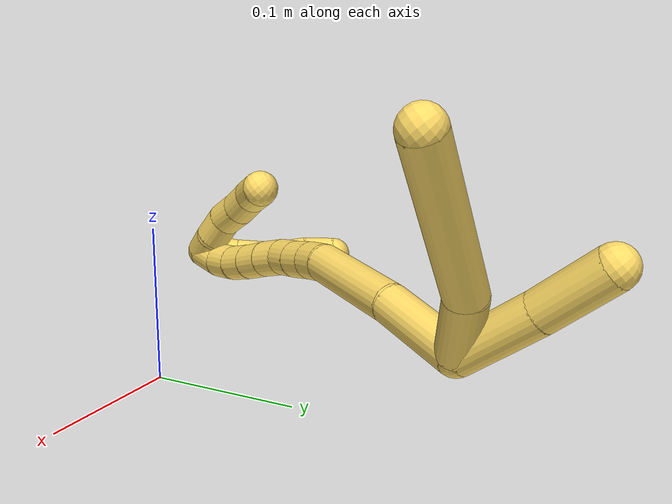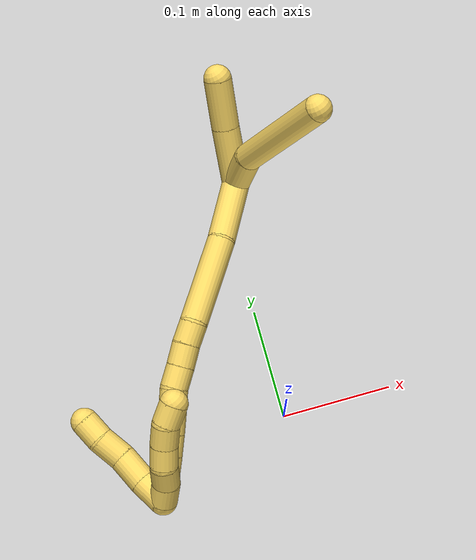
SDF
<sdf version="1.7">
 <world name="default">
  <model name="5">
   <static>0</static>
   <link name="5">
    <collision name="collision-cylinder-e_1_2_8">
     <pose>0.015016 -0.002826 0.013752 0.202695 0.818984 0.088221</pose>
     <geometry><cylinder><radius>0.0125</radius><length>0.041114</length></cylinder></geometry>
     <surface>
      <friction><ode><mu>1.16</mu><mu2>1.16</mu2><slip1>0</slip1><slip2>0</slip2></ode></friction>
      <contact><ode><kp>1e+06</kp><kd>1</kd><max_vel>0</max_vel><min_depth>0.001</min_depth></ode></contact>
     </surface>
    </collision>
    <visual name="visual-cylinder-e_1_2_8">
     <pose>0.015016 -0.002826 0.013752 0.202695 0.818984 0.088221</pose>
     <geometry><cylinder><radius>0.0125</radius><length>0.041114</length></cylinder></geometry>
     <material><ambient>1 0.858824 0.4 1</ambient></material>
    </visual>
    <collision name="collision-cylinder-e_2_8_6">
     <pose>0.079346 -0.01411 0.048967 0.375371 1.13325 0.240495</pose>
     <geometry><cylinder><radius>0.0125</radius><length>0.108886</length></cylinder></geometry>
     <surface>
      <friction><ode><mu>1.16</mu><mu2>1.16</mu2><slip1>0</slip1><slip2>0</slip2></ode></friction>
      <contact><ode><kp>1e+06</kp><kd>1</kd><max_vel>0</max_vel><min_depth>0.001</min_depth></ode></contact>
     </surface>
    </collision>
    <visual name="visual-cylinder-e_2_8_6">
     <pose>0.079346 -0.01411 0.048967 0.375371 1.13325 0.240495</pose>
     <geometry><cylinder><radius>0.0125</radius><length>0.108886</length></cylinder></geometry>
     <material><ambient>1 0.858824 0.4 1</ambient></material>
    </visual>
    <collision name="collision-cylinder-e_1_2_9">
     <pose>0.005098 0.007411 0.025532 -0.282491 0.189442 -0.027016</pose>
     <geometry><cylinder><radius>0.0125</radius><length>0.054139</length></cylinder></geometry>
     <surface>
      <friction><ode><mu>1.16</mu><mu2>1.16</mu2><slip1>0</slip1><slip2>0</slip2></ode></friction>
      <contact><ode><kp>1e+06</kp><kd>1</kd><max_vel>0</max_vel><min_depth>0.001</min_depth></ode></contact>
     </surface>
    </collision>
    <visual name="visual-cylinder-e_1_2_9">
     <pose>0.005098 0.007411 0.025532 -0.282491 0.189442 -0.027016</pose>
     <geometry><cylinder><radius>0.0125</radius><length>0.054139</length></cylinder></geometry>
     <material><ambient>1 0.858824 0.4 1</ambient></material>
    </visual>
    <collision name="collision-cylinder-e_2_9_5">
     <pose>0.015548 0.02032 0.072671 -0.249189 0.235641 -0.029648</pose>
     <geometry><cylinder><radius>0.0125</radius><length>0.045861</length></cylinder></geometry>
     <surface>
      <friction><ode><mu>1.16</mu><mu2>1.16</mu2><slip1>0</slip1><slip2>0</slip2></ode></friction>
      <contact><ode><kp>1e+06</kp><kd>1</kd><max_vel>0</max_vel><min_depth>0.001</min_depth></ode></contact>
     </surface>
    </collision>
    <visual name="visual-cylinder-e_2_9_5">
     <pose>0.015548 0.02032 0.072671 -0.249189 0.235641 -0.029648</pose>
     <geometry><cylinder><radius>0.0125</radius><length>0.045861</length></cylinder></geometry>
     <material><ambient>1 0.858824 0.4 1</ambient></material>
    </visual>
    <collision name="collision-cylinder-e_1_2_10">
     <pose>-0.002231 -0.028213 -0.010112 1.91495 -0.074315 -0.10553</pose>
     <geometry><cylinder><radius>0.0125</radius><length>0.060107</length></cylinder></geometry>
     <surface>
      <friction><ode><mu>1.16</mu><mu2>1.16</mu2><slip1>0</slip1><slip2>0</slip2></ode></friction>
      <contact><ode><kp>1e+06</kp><kd>1</kd><max_vel>0</max_vel><min_depth>0.001</min_depth></ode></contact>
     </surface>
    </collision>
    <visual name="visual-cylinder-e_1_2_10">
     <pose>-0.002231 -0.028213 -0.010112 1.91495 -0.074315 -0.10553</pose>
     <geometry><cylinder><radius>0.0125</radius><length>0.060107</length></cylinder></geometry>
     <material><ambient>1 0.858824 0.4 1</ambient></material>
    </visual>
    <collision name="collision-cylinder-e_2_10_11">
     <pose>-0.013485 -0.091807 -0.03617 1.99422 -0.228412 -0.351367</pose>
     <geometry><cylinder><radius>0.0125</radius><length>0.079687</length></cylinder></geometry>
     <surface>
      <friction><ode><mu>1.16</mu><mu2>1.16</mu2><slip1>0</slip1><slip2>0</slip2></ode></friction>
      <contact><ode><kp>1e+06</kp><kd>1</kd><max_vel>0</max_vel><min_depth>0.001</min_depth></ode></contact>
     </surface>
    </collision>
    <visual name="visual-cylinder-e_2_10_11">
     <pose>-0.013485 -0.091807 -0.03617 1.99422 -0.228412 -0.351367</pose>
     <geometry><cylinder><radius>0.0125</radius><length>0.079687</length></cylinder></geometry>
     <material><ambient>1 0.858824 0.4 1</ambient></material>
    </visual>
    <collision name="collision-cylinder-e_3_11_12">
     <pose>-0.026211 -0.134905 -0.057332 2.16525 -0.378595 -0.692502</pose>
     <geometry><cylinder><radius>0.0125</radius><length>0.020048</length></cylinder></geometry>
     <surface>
      <friction><ode><mu>1.16</mu><mu2>1.16</mu2><slip1>0</slip1><slip2>0</slip2></ode></friction>
      <contact><ode><kp>1e+06</kp><kd>1</kd><max_vel>0</max_vel><min_depth>0.001</min_depth></ode></contact>
     </surface>
    </collision>
    <visual name="visual-cylinder-e_3_11_12">
     <pose>-0.026211 -0.134905 -0.057332 2.16525 -0.378595 -0.692502</pose>
     <geometry><cylinder><radius>0.0125</radius><length>0.020048</length></cylinder></geometry>
     <material><ambient>1 0.858824 0.4 1</ambient></material>
    </visual>
    <collision name="collision-cylinder-e_4_12_13">
     <pose>-0.033157 -0.150095 -0.068481 2.24176 -0.327384 -0.659059</pose>
     <geometry><cylinder><radius>0.0125</radius><length>0.020155</length></cylinder></geometry>
     <surface>
      <friction><ode><mu>1.16</mu><mu2>1.16</mu2><slip1>0</slip1><slip2>0</slip2></ode></friction>
      <contact><ode><kp>1e+06</kp><kd>1</kd><max_vel>0</max_vel><min_depth>0.001</min_depth></ode></contact>
     </surface>
    </collision>
    <visual name="visual-cylinder-e_4_12_13">
     <pose>-0.033157 -0.150095 -0.068481 2.24176 -0.327384 -0.659059</pose>
     <geometry><cylinder><radius>0.0125</radius><length>0.020155</length></cylinder></geometry>
     <material><ambient>1 0.858824 0.4 1</ambient></material>
    </visual>
    <collision name="collision-cylinder-e_5_13_14">
     <pose>-0.039681 -0.165252 -0.079909 2.19159 -0.334539 -0.634465</pose>
     <geometry><cylinder><radius>0.0125</radius><length>0.020003</length></cylinder></geometry>
     <surface>
      <friction><ode><mu>1.16</mu><mu2>1.16</mu2><slip1>0</slip1><slip2>0</slip2></ode></friction>
      <contact><ode><kp>1e+06</kp><kd>1</kd><max_vel>0</max_vel><min_depth>0.001</min_depth></ode></contact>
     </surface>
    </collision>
    <visual name="visual-cylinder-e_5_13_14">
     <pose>-0.039681 -0.165252 -0.079909 2.19159 -0.334539 -0.634465</pose>
     <geometry><cylinder><radius>0.0125</radius><length>0.020003</length></cylinder></geometry>
     <material><ambient>1 0.858824 0.4 1</ambient></material>
    </visual>
    <collision name="collision-cylinder-e_6_14_15">
     <pose>-0.045111 -0.179465 -0.092669 2.40953 -0.216298 -0.552047</pose>
     <geometry><cylinder><radius>0.0125</radius><length>0.02</length></cylinder></geometry>
     <surface>
      <friction><ode><mu>1.16</mu><mu2>1.16</mu2><slip1>0</slip1><slip2>0</slip2></ode></friction>
      <contact><ode><kp>1e+06</kp><kd>1</kd><max_vel>0</max_vel><min_depth>0.001</min_depth></ode></contact>
     </surface>
    </collision>
    <visual name="visual-cylinder-e_6_14_15">
     <pose>-0.045111 -0.179465 -0.092669 2.40953 -0.216298 -0.552047</pose>
     <geometry><cylinder><radius>0.0125</radius><length>0.02</length></cylinder></geometry>
     <material><ambient>1 0.858824 0.4 1</ambient></material>
    </visual>
    <collision name="collision-cylinder-e_7_15_16">
     <pose>-0.049739 -0.192314 -0.107276 2.43083 -0.250782 -0.654823</pose>
     <geometry><cylinder><radius>0.0125</radius><length>0.02</length></cylinder></geometry>
     <surface>
      <friction><ode><mu>1.16</mu><mu2>1.16</mu2><slip1>0</slip1><slip2>0</slip2></ode></friction>
      <contact><ode><kp>1e+06</kp><kd>1</kd><max_vel>0</max_vel><min_depth>0.001</min_depth></ode></contact>
     </surface>
    </collision>
    <visual name="visual-cylinder-e_7_15_16">
     <pose>-0.049739 -0.192314 -0.107276 2.43083 -0.250782 -0.654823</pose>
     <geometry><cylinder><radius>0.0125</radius><length>0.02</length></cylinder></geometry>
     <material><ambient>1 0.858824 0.4 1</ambient></material>
    </visual>
    <collision name="collision-cylinder-e_8_16_17">
     <pose>-0.054626 -0.205339 -0.121636 2.37903 -0.242941 -0.591152</pose>
     <geometry><cylinder><radius>0.0125</radius><length>0.02</length></cylinder></geometry>
     <surface>
      <friction><ode><mu>1.16</mu><mu2>1.16</mu2><slip1>0</slip1><slip2>0</slip2></ode></friction>
      <contact><ode><kp>1e+06</kp><kd>1</kd><max_vel>0</max_vel><min_depth>0.001</min_depth></ode></contact>
     </surface>
    </collision>
    <visual name="visual-cylinder-e_8_16_17">
     <pose>-0.054626 -0.205339 -0.121636 2.37903 -0.242941 -0.591152</pose>
     <geometry><cylinder><radius>0.0125</radius><length>0.02</length></cylinder></geometry>
     <material><ambient>1 0.858824 0.4 1</ambient></material>
    </visual>
    <collision name="collision-cylinder-e_9_17_18">
     <pose>-0.058735 -0.219819 -0.134707 2.23229 -0.171201 -0.347562</pose>
     <geometry><cylinder><radius>0.0125</radius><length>0.02</length></cylinder></geometry>
     <surface>
      <friction><ode><mu>1.16</mu><mu2>1.16</mu2><slip1>0</slip1><slip2>0</slip2></ode></friction>
      <contact><ode><kp>1e+06</kp><kd>1</kd><max_vel>0</max_vel><min_depth>0.001</min_depth></ode></contact>
     </surface>
    </collision>
    <visual name="visual-cylinder-e_9_17_18">
     <pose>-0.058735 -0.219819 -0.134707 2.23229 -0.171201 -0.347562</pose>
     <geometry><cylinder><radius>0.0125</radius><length>0.02</length></cylinder></geometry>
     <material><ambient>1 0.858824 0.4 1</ambient></material>
    </visual>
    <collision name="collision-cylinder-e_10_18_1">
     <pose>-0.060096 -0.236544 -0.14521 2.03216 0.034348 0.055426</pose>
     <geometry><cylinder><radius>0.0125</radius><length>0.02</length></cylinder></geometry>
     <surface>
      <friction><ode><mu>1.16</mu><mu2>1.16</mu2><slip1>0</slip1><slip2>0</slip2></ode></friction>
      <contact><ode><kp>1e+06</kp><kd>1</kd><max_vel>0</max_vel><min_depth>0.001</min_depth></ode></contact>
     </surface>
    </collision>
    <visual name="visual-cylinder-e_10_18_1">
     <pose>-0.060096 -0.236544 -0.14521 2.03216 0.034348 0.055426</pose>
     <geometry><cylinder><radius>0.0125</radius><length>0.02</length></cylinder></geometry>
     <material><ambient>1 0.858824 0.4 1</ambient></material>
    </visual>
    <collision name="collision-cylinder-e_1_1_19">
     <pose>-0.06833 -0.240479 -0.141955 -0.576977 -0.750836 0.23286</pose>
     <geometry><cylinder><radius>0.0125</radius><length>0.025145</length></cylinder></geometry>
     <surface>
      <friction><ode><mu>1.16</mu><mu2>1.16</mu2><slip1>0</slip1><slip2>0</slip2></ode></friction>
      <contact><ode><kp>1e+06</kp><kd>1</kd><max_vel>0</max_vel><min_depth>0.001</min_depth></ode></contact>
     </surface>
    </collision>
    <visual name="visual-cylinder-e_1_1_19">
     <pose>-0.06833 -0.240479 -0.141955 -0.576977 -0.750836 0.23286</pose>
     <geometry><cylinder><radius>0.0125</radius><length>0.025145</length></cylinder></geometry>
     <material><ambient>1 0.858824 0.4 1</ambient></material>
    </visual>
    <collision name="collision-cylinder-e_2_19_20">
     <pose>-0.084958 -0.229587 -0.124083 -0.524145 -0.600917 0.165842</pose>
     <geometry><cylinder><radius>0.0125</radius><length>0.028477</length></cylinder></geometry>
     <surface>
      <friction><ode><mu>1.16</mu><mu2>1.16</mu2><slip1>0</slip1><slip2>0</slip2></ode></friction>
      <contact><ode><kp>1e+06</kp><kd>1</kd><max_vel>0</max_vel><min_depth>0.001</min_depth></ode></contact>
     </surface>
    </collision>
    <visual name="visual-cylinder-e_2_19_20">
     <pose>-0.084958 -0.229587 -0.124083 -0.524145 -0.600917 0.165842</pose>
     <geometry><cylinder><radius>0.0125</radius><length>0.028477</length></cylinder></geometry>
     <material><ambient>1 0.858824 0.4 1</ambient></material>
    </visual>
    <collision name="collision-cylinder-e_3_20_21">
     <pose>-0.100198 -0.221417 -0.103946 -0.225998 -0.612618 0.07175</pose>
     <geometry><cylinder><radius>0.0125</radius><length>0.025006</length></cylinder></geometry>
     <surface>
      <friction><ode><mu>1.16</mu><mu2>1.16</mu2><slip1>0</slip1><slip2>0</slip2></ode></friction>
      <contact><ode><kp>1e+06</kp><kd>1</kd><max_vel>0</max_vel><min_depth>0.001</min_depth></ode></contact>
     </surface>
    </collision>
    <visual name="visual-cylinder-e_3_20_21">
     <pose>-0.100198 -0.221417 -0.103946 -0.225998 -0.612618 0.07175</pose>
     <geometry><cylinder><radius>0.0125</radius><length>0.025006</length></cylinder></geometry>
     <material><ambient>1 0.858824 0.4 1</ambient></material>
    </visual>
    <collision name="collision-cylinder-e_4_21_4">
     <pose>-0.113325 -0.215123 -0.086045 -0.467329 -0.589107 0.144165</pose>
     <geometry><cylinder><radius>0.0125</radius><length>0.021372</length></cylinder></geometry>
     <surface>
      <friction><ode><mu>1.16</mu><mu2>1.16</mu2><slip1>0</slip1><slip2>0</slip2></ode></friction>
      <contact><ode><kp>1e+06</kp><kd>1</kd><max_vel>0</max_vel><min_depth>0.001</min_depth></ode></contact>
     </surface>
    </collision>
    <visual name="visual-cylinder-e_4_21_4">
     <pose>-0.113325 -0.215123 -0.086045 -0.467329 -0.589107 0.144165</pose>
     <geometry><cylinder><radius>0.0125</radius><length>0.021372</length></cylinder></geometry>
     <material><ambient>1 0.858824 0.4 1</ambient></material>
    </visual>
    <collision name="collision-cylinder-e_1_1_22">
     <pose>-0.054595 -0.243001 -0.141462 -0.29516 0.54185 -0.082535</pose>
     <geometry><cylinder><radius>0.0125</radius><length>0.02</length></cylinder></geometry>
     <surface>
      <friction><ode><mu>1.16</mu><mu2>1.16</mu2><slip1>0</slip1><slip2>0</slip2></ode></friction>
      <contact><ode><kp>1e+06</kp><kd>1</kd><max_vel>0</max_vel><min_depth>0.001</min_depth></ode></contact>
     </surface>
    </collision>
    <visual name="visual-cylinder-e_1_1_22">
     <pose>-0.054595 -0.243001 -0.141462 -0.29516 0.54185 -0.082535</pose>
     <geometry><cylinder><radius>0.0125</radius><length>0.02</length></cylinder></geometry>
     <material><ambient>1 0.858824 0.4 1</ambient></material>
    </visual>
    <collision name="collision-cylinder-e_2_22_23">
     <pose>-0.045741 -0.239445 -0.124034 -0.114782 0.378625 -0.022016</pose>
     <geometry><cylinder><radius>0.0125</radius><length>0.02</length></cylinder></geometry>
     <surface>
      <friction><ode><mu>1.16</mu><mu2>1.16</mu2><slip1>0</slip1><slip2>0</slip2></ode></friction>
      <contact><ode><kp>1e+06</kp><kd>1</kd><max_vel>0</max_vel><min_depth>0.001</min_depth></ode></contact>
     </surface>
    </collision>
    <visual name="visual-cylinder-e_2_22_23">
     <pose>-0.045741 -0.239445 -0.124034 -0.114782 0.378625 -0.022016</pose>
     <geometry><cylinder><radius>0.0125</radius><length>0.02</length></cylinder></geometry>
     <material><ambient>1 0.858824 0.4 1</ambient></material>
    </visual>
    <collision name="collision-cylinder-e_3_23_24">
     <pose>-0.038735 -0.234424 -0.106237 -0.432695 0.337404 -0.074834</pose>
     <geometry><cylinder><radius>0.0125</radius><length>0.02</length></cylinder></geometry>
     <surface>
      <friction><ode><mu>1.16</mu><mu2>1.16</mu2><slip1>0</slip1><slip2>0</slip2></ode></friction>
      <contact><ode><kp>1e+06</kp><kd>1</kd><max_vel>0</max_vel><min_depth>0.001</min_depth></ode></contact>
     </surface>
    </collision>
    <visual name="visual-cylinder-e_3_23_24">
     <pose>-0.038735 -0.234424 -0.106237 -0.432695 0.337404 -0.074834</pose>
     <geometry><cylinder><radius>0.0125</radius><length>0.02</length></cylinder></geometry>
     <material><ambient>1 0.858824 0.4 1</ambient></material>
    </visual>
    <collision name="collision-cylinder-e_4_24_25">
     <pose>-0.031269 -0.22682 -0.089337 -0.412482 0.428468 -0.090976</pose>
     <geometry><cylinder><radius>0.0125</radius><length>0.02</length></cylinder></geometry>
     <surface>
      <friction><ode><mu>1.16</mu><mu2>1.16</mu2><slip1>0</slip1><slip2>0</slip2></ode></friction>
      <contact><ode><kp>1e+06</kp><kd>1</kd><max_vel>0</max_vel><min_depth>0.001</min_depth></ode></contact>
     </surface>
    </collision>
    <visual name="visual-cylinder-e_4_24_25">
     <pose>-0.031269 -0.22682 -0.089337 -0.412482 0.428468 -0.090976</pose>
     <geometry><cylinder><radius>0.0125</radius><length>0.02</length></cylinder></geometry>
     <material><ambient>1 0.858824 0.4 1</ambient></material>
    </visual>
    <collision name="collision-cylinder-e_5_25_3">
     <pose>-0.021824 -0.217481 -0.074711 -0.735385 0.557465 -0.219594</pose>
     <geometry><cylinder><radius>0.0125</radius><length>0.02</length></cylinder></geometry>
     <surface>
      <friction><ode><mu>1.16</mu><mu2>1.16</mu2><slip1>0</slip1><slip2>0</slip2></ode></friction>
      <contact><ode><kp>1e+06</kp><kd>1</kd><max_vel>0</max_vel><min_depth>0.001</min_depth></ode></contact>
     </surface>
    </collision>
    <visual name="visual-cylinder-e_5_25_3">
     <pose>-0.021824 -0.217481 -0.074711 -0.735385 0.557465 -0.219594</pose>
     <geometry><cylinder><radius>0.0125</radius><length>0.02</length></cylinder></geometry>
     <material><ambient>1 0.858824 0.4 1</ambient></material>
    </visual>
    <collision name="collision-sphere-3">
     <pose>-0.016534 -0.211788 -0.068418 0 -0 0</pose>
     <geometry><sphere><radius>0.0125</radius></sphere></geometry>
     <surface>
      <friction><ode><mu>1.16</mu><mu2>1.16</mu2><slip1>0</slip1><slip2>0</slip2></ode></friction>
      <contact><ode><kp>1e+06</kp><kd>1</kd><max_vel>0</max_vel><min_depth>0.001</min_depth></ode></contact>
     </surface>
    </collision>
    <visual name="visual-sphere-3">
     <pose>-0.016534 -0.211788 -0.068418 0 -0 0</pose>
     <geometry><sphere><radius>0.0125</radius></sphere></geometry>
     <material><ambient>1 0.858824 0.4 1</ambient></material>
    </visual>
    <collision name="collision-sphere-25">
     <pose>-0.027115 -0.223174 -0.081004 0 -0 0</pose>
     <geometry><sphere><radius>0.0125</radius></sphere></geometry>
     <surface>
      <friction><ode><mu>1.16</mu><mu2>1.16</mu2><slip1>0</slip1><slip2>0</slip2></ode></friction>
      <contact><ode><kp>1e+06</kp><kd>1</kd><max_vel>0</max_vel><min_depth>0.001</min_depth></ode></contact>
     </surface>
    </collision>
    <visual name="visual-sphere-25">
     <pose>-0.027115 -0.223174 -0.081004 0 -0 0</pose>
     <geometry><sphere><radius>0.0125</radius></sphere></geometry>
     <material><ambient>1 0.858824 0.4 1</ambient></material>
    </visual>
    <collision name="collision-sphere-24">
     <pose>-0.035424 -0.230467 -0.09767 0 -0 0</pose>
     <geometry><sphere><radius>0.0125</radius></sphere></geometry>
     <surface>
      <friction><ode><mu>1.16</mu><mu2>1.16</mu2><slip1>0</slip1><slip2>0</slip2></ode></friction>
      <contact><ode><kp>1e+06</kp><kd>1</kd><max_vel>0</max_vel><min_depth>0.001</min_depth></ode></contact>
     </surface>
    </collision>
    <visual name="visual-sphere-24">
     <pose>-0.035424 -0.230467 -0.09767 0 -0 0</pose>
     <geometry><sphere><radius>0.0125</radius></sphere></geometry>
     <material><ambient>1 0.858824 0.4 1</ambient></material>
    </visual>
    <collision name="collision-sphere-23">
     <pose>-0.042045 -0.23838 -0.114803 0 -0 0</pose>
     <geometry><sphere><radius>0.0125</radius></sphere></geometry>
     <surface>
      <friction><ode><mu>1.16</mu><mu2>1.16</mu2><slip1>0</slip1><slip2>0</slip2></ode></friction>
      <contact><ode><kp>1e+06</kp><kd>1</kd><max_vel>0</max_vel><min_depth>0.001</min_depth></ode></contact>
     </surface>
    </collision>
    <visual name="visual-sphere-23">
     <pose>-0.042045 -0.23838 -0.114803 0 -0 0</pose>
     <geometry><sphere><radius>0.0125</radius></sphere></geometry>
     <material><ambient>1 0.858824 0.4 1</ambient></material>
    </visual>
    <collision name="collision-sphere-22">
     <pose>-0.049438 -0.240509 -0.133265 0 -0 0</pose>
     <geometry><sphere><radius>0.0125</radius></sphere></geometry>
     <surface>
      <friction><ode><mu>1.16</mu><mu2>1.16</mu2><slip1>0</slip1><slip2>0</slip2></ode></friction>
      <contact><ode><kp>1e+06</kp><kd>1</kd><max_vel>0</max_vel><min_depth>0.001</min_depth></ode></contact>
     </surface>
    </collision>
    <visual name="visual-sphere-22">
     <pose>-0.049438 -0.240509 -0.133265 0 -0 0</pose>
     <geometry><sphere><radius>0.0125</radius></sphere></geometry>
     <material><ambient>1 0.858824 0.4 1</ambient></material>
    </visual>
    <collision name="collision-sphere-4">
     <pose>-0.119262 -0.21112 -0.078113 0 -0 0</pose>
     <geometry><sphere><radius>0.0125</radius></sphere></geometry>
     <surface>
      <friction><ode><mu>1.16</mu><mu2>1.16</mu2><slip1>0</slip1><slip2>0</slip2></ode></friction>
      <contact><ode><kp>1e+06</kp><kd>1</kd><max_vel>0</max_vel><min_depth>0.001</min_depth></ode></contact>
     </surface>
    </collision>
    <visual name="visual-sphere-4">
     <pose>-0.119262 -0.21112 -0.078113 0 -0 0</pose>
     <geometry><sphere><radius>0.0125</radius></sphere></geometry>
     <material><ambient>1 0.858824 0.4 1</ambient></material>
    </visual>
    <collision name="collision-sphere-21">
     <pose>-0.107387 -0.219125 -0.093977 0 -0 0</pose>
     <geometry><sphere><radius>0.0125</radius></sphere></geometry>
     <surface>
      <friction><ode><mu>1.16</mu><mu2>1.16</mu2><slip1>0</slip1><slip2>0</slip2></ode></friction>
      <contact><ode><kp>1e+06</kp><kd>1</kd><max_vel>0</max_vel><min_depth>0.001</min_depth></ode></contact>
     </surface>
    </collision>
    <visual name="visual-sphere-21">
     <pose>-0.107387 -0.219125 -0.093977 0 -0 0</pose>
     <geometry><sphere><radius>0.0125</radius></sphere></geometry>
     <material><ambient>1 0.858824 0.4 1</ambient></material>
    </visual>
    <collision name="collision-sphere-20">
     <pose>-0.093008 -0.22371 -0.113916 0 -0 0</pose>
     <geometry><sphere><radius>0.0125</radius></sphere></geometry>
     <surface>
      <friction><ode><mu>1.16</mu><mu2>1.16</mu2><slip1>0</slip1><slip2>0</slip2></ode></friction>
      <contact><ode><kp>1e+06</kp><kd>1</kd><max_vel>0</max_vel><min_depth>0.001</min_depth></ode></contact>
     </surface>
    </collision>
    <visual name="visual-sphere-20">
     <pose>-0.093008 -0.22371 -0.113916 0 -0 0</pose>
     <geometry><sphere><radius>0.0125</radius></sphere></geometry>
     <material><ambient>1 0.858824 0.4 1</ambient></material>
    </visual>
    <collision name="collision-sphere-10">
     <pose>-0.004463 -0.056426 -0.020224 0 -0 0</pose>
     <geometry><sphere><radius>0.0125</radius></sphere></geometry>
     <surface>
      <friction><ode><mu>1.16</mu><mu2>1.16</mu2><slip1>0</slip1><slip2>0</slip2></ode></friction>
      <contact><ode><kp>1e+06</kp><kd>1</kd><max_vel>0</max_vel><min_depth>0.001</min_depth></ode></contact>
     </surface>
    </collision>
    <visual name="visual-sphere-10">
     <pose>-0.004463 -0.056426 -0.020224 0 -0 0</pose>
     <geometry><sphere><radius>0.0125</radius></sphere></geometry>
     <material><ambient>1 0.858824 0.4 1</ambient></material>
    </visual>
    <collision name="collision-sphere-5">
     <pose>0.020902 0.025819 0.094279 0 -0 0</pose>
     <geometry><sphere><radius>0.0125</radius></sphere></geometry>
     <surface>
      <friction><ode><mu>1.16</mu><mu2>1.16</mu2><slip1>0</slip1><slip2>0</slip2></ode></friction>
      <contact><ode><kp>1e+06</kp><kd>1</kd><max_vel>0</max_vel><min_depth>0.001</min_depth></ode></contact>
     </surface>
    </collision>
    <visual name="visual-sphere-5">
     <pose>0.020902 0.025819 0.094279 0 -0 0</pose>
     <geometry><sphere><radius>0.0125</radius></sphere></geometry>
     <material><ambient>1 0.858824 0.4 1</ambient></material>
    </visual>
    <collision name="collision-sphere-6">
     <pose>0.12866 -0.022567 0.070429 0 -0 0</pose>
     <geometry><sphere><radius>0.0125</radius></sphere></geometry>
     <surface>
      <friction><ode><mu>1.16</mu><mu2>1.16</mu2><slip1>0</slip1><slip2>0</slip2></ode></friction>
      <contact><ode><kp>1e+06</kp><kd>1</kd><max_vel>0</max_vel><min_depth>0.001</min_depth></ode></contact>
     </surface>
    </collision>
    <visual name="visual-sphere-6">
     <pose>0.12866 -0.022567 0.070429 0 -0 0</pose>
     <geometry><sphere><radius>0.0125</radius></sphere></geometry>
     <material><ambient>1 0.858824 0.4 1</ambient></material>
    </visual>
    <collision name="collision-sphere-9">
     <pose>0.010195 0.014821 0.051063 0 -0 0</pose>
     <geometry><sphere><radius>0.0125</radius></sphere></geometry>
     <surface>
      <friction><ode><mu>1.16</mu><mu2>1.16</mu2><slip1>0</slip1><slip2>0</slip2></ode></friction>
      <contact><ode><kp>1e+06</kp><kd>1</kd><max_vel>0</max_vel><min_depth>0.001</min_depth></ode></contact>
     </surface>
    </collision>
    <visual name="visual-sphere-9">
     <pose>0.010195 0.014821 0.051063 0 -0 0</pose>
     <geometry><sphere><radius>0.0125</radius></sphere></geometry>
     <material><ambient>1 0.858824 0.4 1</ambient></material>
    </visual>
    <collision name="collision-sphere-2">
     <geometry><sphere><radius>0.0125</radius></sphere></geometry>
     <surface>
      <friction><ode><mu>1.16</mu><mu2>1.16</mu2><slip1>0</slip1><slip2>0</slip2></ode></friction>
      <contact><ode><kp>1e+06</kp><kd>1</kd><max_vel>0</max_vel><min_depth>0.001</min_depth></ode></contact>
     </surface>
    </collision>
    <visual name="visual-sphere-2">
     <geometry><sphere><radius>0.0125</radius></sphere></geometry>
     <material><ambient>1 0.858824 0.4 1</ambient></material>
    </visual>
    <collision name="collision-sphere-19">
     <pose>-0.076907 -0.235465 -0.134251 0 -0 0</pose>
     <geometry><sphere><radius>0.0125</radius></sphere></geometry>
     <surface>
      <friction><ode><mu>1.16</mu><mu2>1.16</mu2><slip1>0</slip1><slip2>0</slip2></ode></friction>
      <contact><ode><kp>1e+06</kp><kd>1</kd><max_vel>0</max_vel><min_depth>0.001</min_depth></ode></contact>
     </surface>
    </collision>
    <visual name="visual-sphere-19">
     <pose>-0.076907 -0.235465 -0.134251 0 -0 0</pose>
     <geometry><sphere><radius>0.0125</radius></sphere></geometry>
     <material><ambient>1 0.858824 0.4 1</ambient></material>
    </visual>
    <collision name="collision-sphere-8">
     <pose>0.030032 -0.005653 0.027504 0 -0 0</pose>
     <geometry><sphere><radius>0.0125</radius></sphere></geometry>
     <surface>
      <friction><ode><mu>1.16</mu><mu2>1.16</mu2><slip1>0</slip1><slip2>0</slip2></ode></friction>
      <contact><ode><kp>1e+06</kp><kd>1</kd><max_vel>0</max_vel><min_depth>0.001</min_depth></ode></contact>
     </surface>
    </collision>
    <visual name="visual-sphere-8">
     <pose>0.030032 -0.005653 0.027504 0 -0 0</pose>
     <geometry><sphere><radius>0.0125</radius></sphere></geometry>
     <material><ambient>1 0.858824 0.4 1</ambient></material>
    </visual>
    <collision name="collision-sphere-11">
     <pose>-0.022506 -0.127189 -0.052116 0 -0 0</pose>
     <geometry><sphere><radius>0.0125</radius></sphere></geometry>
     <surface>
      <friction><ode><mu>1.16</mu><mu2>1.16</mu2><slip1>0</slip1><slip2>0</slip2></ode></friction>
      <contact><ode><kp>1e+06</kp><kd>1</kd><max_vel>0</max_vel><min_depth>0.001</min_depth></ode></contact>
     </surface>
    </collision>
    <visual name="visual-sphere-11">
     <pose>-0.022506 -0.127189 -0.052116 0 -0 0</pose>
     <geometry><sphere><radius>0.0125</radius></sphere></geometry>
     <material><ambient>1 0.858824 0.4 1</ambient></material>
    </visual>
    <collision name="collision-sphere-12">
     <pose>-0.029916 -0.142621 -0.062549 0 -0 0</pose>
     <geometry><sphere><radius>0.0125</radius></sphere></geometry>
     <surface>
      <friction><ode><mu>1.16</mu><mu2>1.16</mu2><slip1>0</slip1><slip2>0</slip2></ode></friction>
      <contact><ode><kp>1e+06</kp><kd>1</kd><max_vel>0</max_vel><min_depth>0.001</min_depth></ode></contact>
     </surface>
    </collision>
    <visual name="visual-sphere-12">
     <pose>-0.029916 -0.142621 -0.062549 0 -0 0</pose>
     <geometry><sphere><radius>0.0125</radius></sphere></geometry>
     <material><ambient>1 0.858824 0.4 1</ambient></material>
    </visual>
    <collision name="collision-sphere-13">
     <pose>-0.036397 -0.157568 -0.074414 0 -0 0</pose>
     <geometry><sphere><radius>0.0125</radius></sphere></geometry>
     <surface>
      <friction><ode><mu>1.16</mu><mu2>1.16</mu2><slip1>0</slip1><slip2>0</slip2></ode></friction>
      <contact><ode><kp>1e+06</kp><kd>1</kd><max_vel>0</max_vel><min_depth>0.001</min_depth></ode></contact>
     </surface>
    </collision>
    <visual name="visual-sphere-13">
     <pose>-0.036397 -0.157568 -0.074414 0 -0 0</pose>
     <geometry><sphere><radius>0.0125</radius></sphere></geometry>
     <material><ambient>1 0.858824 0.4 1</ambient></material>
    </visual>
    <collision name="collision-sphere-14">
     <pose>-0.042965 -0.172937 -0.085404 0 -0 0</pose>
     <geometry><sphere><radius>0.0125</radius></sphere></geometry>
     <surface>
      <friction><ode><mu>1.16</mu><mu2>1.16</mu2><slip1>0</slip1><slip2>0</slip2></ode></friction>
      <contact><ode><kp>1e+06</kp><kd>1</kd><max_vel>0</max_vel><min_depth>0.001</min_depth></ode></contact>
     </surface>
    </collision>
    <visual name="visual-sphere-14">
     <pose>-0.042965 -0.172937 -0.085404 0 -0 0</pose>
     <geometry><sphere><radius>0.0125</radius></sphere></geometry>
     <material><ambient>1 0.858824 0.4 1</ambient></material>
    </visual>
    <collision name="collision-sphere-15">
     <pose>-0.047257 -0.185994 -0.099934 0 -0 0</pose>
     <geometry><sphere><radius>0.0125</radius></sphere></geometry>
     <surface>
      <friction><ode><mu>1.16</mu><mu2>1.16</mu2><slip1>0</slip1><slip2>0</slip2></ode></friction>
      <contact><ode><kp>1e+06</kp><kd>1</kd><max_vel>0</max_vel><min_depth>0.001</min_depth></ode></contact>
     </surface>
    </collision>
    <visual name="visual-sphere-15">
     <pose>-0.047257 -0.185994 -0.099934 0 -0 0</pose>
     <geometry><sphere><radius>0.0125</radius></sphere></geometry>
     <material><ambient>1 0.858824 0.4 1</ambient></material>
    </visual>
    <collision name="collision-sphere-16">
     <pose>-0.052221 -0.198634 -0.114617 0 -0 0</pose>
     <geometry><sphere><radius>0.0125</radius></sphere></geometry>
     <surface>
      <friction><ode><mu>1.16</mu><mu2>1.16</mu2><slip1>0</slip1><slip2>0</slip2></ode></friction>
      <contact><ode><kp>1e+06</kp><kd>1</kd><max_vel>0</max_vel><min_depth>0.001</min_depth></ode></contact>
     </surface>
    </collision>
    <visual name="visual-sphere-16">
     <pose>-0.052221 -0.198634 -0.114617 0 -0 0</pose>
     <geometry><sphere><radius>0.0125</radius></sphere></geometry>
     <material><ambient>1 0.858824 0.4 1</ambient></material>
    </visual>
    <collision name="collision-sphere-17">
     <pose>-0.057032 -0.212044 -0.128654 0 -0 0</pose>
     <geometry><sphere><radius>0.0125</radius></sphere></geometry>
     <surface>
      <friction><ode><mu>1.16</mu><mu2>1.16</mu2><slip1>0</slip1><slip2>0</slip2></ode></friction>
      <contact><ode><kp>1e+06</kp><kd>1</kd><max_vel>0</max_vel><min_depth>0.001</min_depth></ode></contact>
     </surface>
    </collision>
    <visual name="visual-sphere-17">
     <pose>-0.057032 -0.212044 -0.128654 0 -0 0</pose>
     <geometry><sphere><radius>0.0125</radius></sphere></geometry>
     <material><ambient>1 0.858824 0.4 1</ambient></material>
    </visual>
    <collision name="collision-sphere-18">
     <pose>-0.060439 -0.227595 -0.140761 0 -0 0</pose>
     <geometry><sphere><radius>0.0125</radius></sphere></geometry>
     <surface>
      <friction><ode><mu>1.16</mu><mu2>1.16</mu2><slip1>0</slip1><slip2>0</slip2></ode></friction>
      <contact><ode><kp>1e+06</kp><kd>1</kd><max_vel>0</max_vel><min_depth>0.001</min_depth></ode></contact>
     </surface>
    </collision>
    <visual name="visual-sphere-18">
     <pose>-0.060439 -0.227595 -0.140761 0 -0 0</pose>
     <geometry><sphere><radius>0.0125</radius></sphere></geometry>
     <material><ambient>1 0.858824 0.4 1</ambient></material>
    </visual>
    <collision name="collision-sphere-1">
     <pose>-0.059752 -0.245493 -0.149659 0 -0 0</pose>
     <geometry><sphere><radius>0.0125</radius></sphere></geometry>
     <surface>
      <friction><ode><mu>1.16</mu><mu2>1.16</mu2><slip1>0</slip1><slip2>0</slip2></ode></friction>
      <contact><ode><kp>1e+06</kp><kd>1</kd><max_vel>0</max_vel><min_depth>0.001</min_depth></ode></contact>
     </surface>
    </collision>
    <visual name="visual-sphere-1">
     <pose>-0.059752 -0.245493 -0.149659 0 -0 0</pose>
     <geometry><sphere><radius>0.0125</radius></sphere></geometry>
     <material><ambient>1 0.858824 0.4 1</ambient></material>
    </visual>
    <inertial>
     <pose>-0.014966 -0.113305 -0.041724 0 -0 0</pose>
     <mass>0.75</mass>
     <inertia><ixx>0.000155</ixx><ixy>0</ixy><ixz>0</ixz><iyy>0.000106</iyy><iyz>0</iyz><izz>-8e-06</izz></inertia>
    </inertial>
   </link>
   <pose>0.0131 0.209059 0.057476 -0.660761 -0.582885 -0.257586</pose>
  </model>
 </world>
</sdf>
